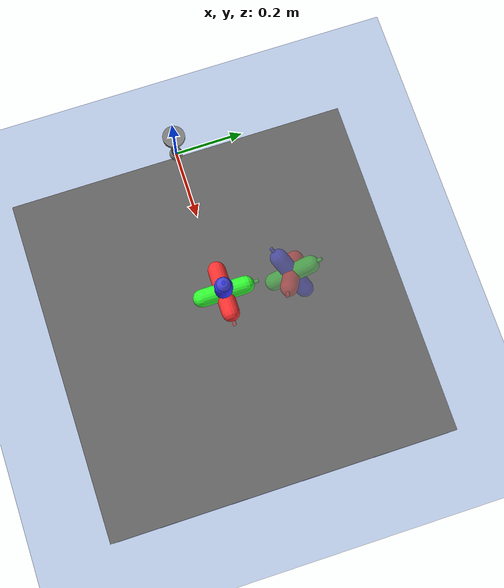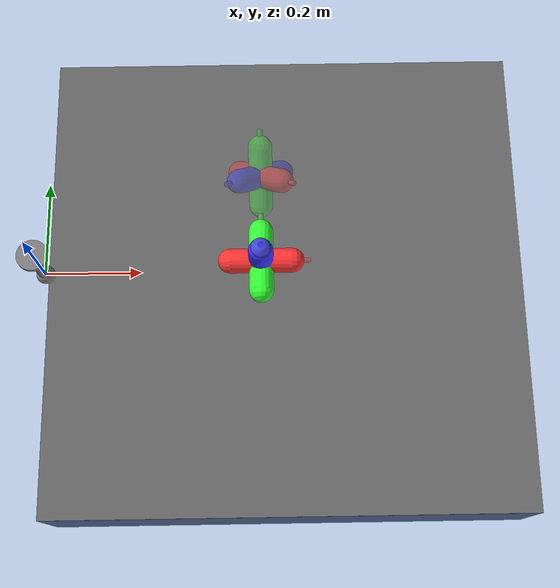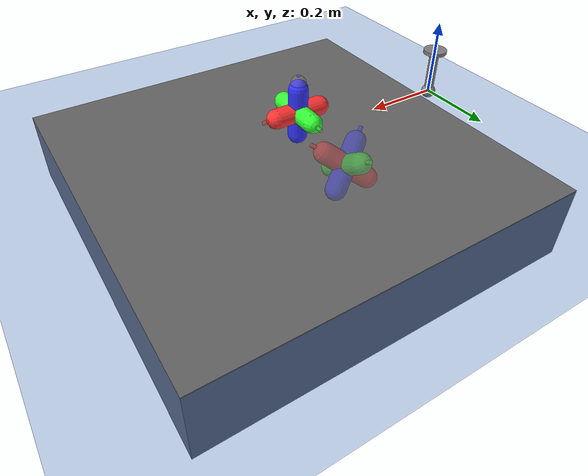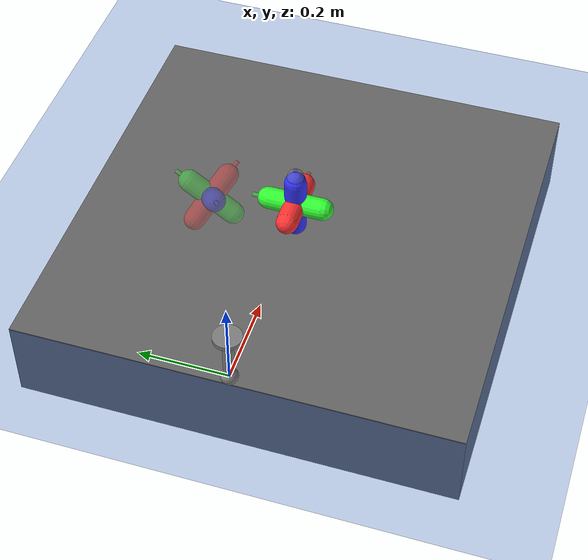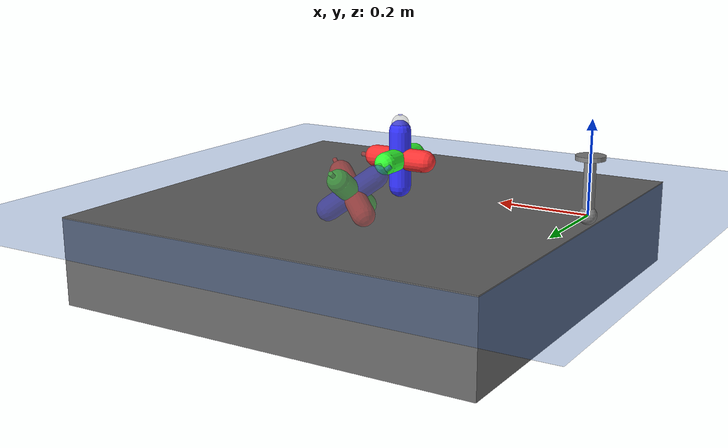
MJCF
<mujoco model="Panda">
  <include file="../common.xml"/>

  <size memory="1M"/>

  <!-- const char kPlannerNames[] =
    "Sampling\n"
    "Gradient\n"
    "iLQG\n"
    "iLQS\n"
    "Robust Sampling\n"
    "Cross Entropy\n"
    "Sample Gradient"; -->

  <custom>
    <numeric name="agent_planner" data="0" />
    <numeric name="agent_horizon" data="0.8" />
    <numeric name="agent_timestep" data="0.01" />
    <numeric name="agent_policy_width" data="0.001" />
    <numeric name="sampling_trajectories" data="116"/>
    <numeric name="sampling_spline_points" data="5"/>
    <!-- sampling_exploration is "Noise Std" slider in GUI -->
    <numeric name="sampling_exploration" data="0.295 0.0" />
    <numeric name="gradient_spline_points" data="6" />

    <!-- cem -->
    <numeric name="n_elite" data="4" />
    <numeric name="std_min" data="0.5" />
  </custom>

  <!-- Set camera angle. -->
  <statistic extent="1.0" center="0.1 0.05 -0.1"/>
  <visual>
    <quality shadowsize="8192"/>
    <global azimuth="200" elevation="-25" />
  </visual>

  <default>
    <geom solref=".001 1" friction="0.3"/>
    <default class="no_collision">
      <geom group="1" contype="0" conaffinity="0" mass="0"/>
    </default>
  </default>

  <compiler texturedir="./textures"/>

  <worldbody>
    <site name="world"/>
    <light pos="0 -0.1 0.5" dir="0 0.2 -1" diffuse="0.7 0.7 0.7" specular="0.3 0.3 0.3" directional="true" castshadow="true"/>

    <!-- Grid for rendering shows up just below table surface. -->
    <geom name="floor" pos="0 0 -0.03" size="0 0 0.05" type="plane" material="blue_grid"/>

    <!-- Table surface height matches that in hardware and Drake simulation. -->
    <body name="table" pos="0.5 0 -0.129">
      <geom name="table" pos="0 0 0" size="0.5 0.5 0.1" type="box" rgba="0.4 0.4 0.4 1"/>
    </body>

    <body name="target" pos="0.45 0.2 0.032" quat="0.880 0.280 -0.365 -0.116" gravcomp="1" mocap="true">
      <!-- Capsules in order BRG, along ZXY directions. -->
      <geom class="no_collision" type="capsule" size="0.025" fromto="0 0 -0.0625 0 0 0.0625" mass=".33" rgba=".2 .2 1 0.4"/>
      <geom class="no_collision" type="capsule" size="0.025" fromto="-0.0625 0 0 0.0625 0 0" mass=".33" rgba="1 .2 .2 0.4"/>
      <geom class="no_collision" type="capsule" size="0.025" fromto="0 -0.0625 0 0 0.0625 0" mass=".33" rgba=".2 1 .2 0.4"/>

      <!-- Add triad for viewing orientation. -->
      <geom class="no_collision" type="cylinder" size="0.005" fromto="0 0 0 0.1 0 0" rgba="1 .2 .2 .4"/>
      <geom class="no_collision" type="cylinder" size="0.005" fromto="0 0 0 0 0.1 0" rgba=".2 1 .2 .4"/>
      <geom class="no_collision" type="cylinder" size="0.005" fromto="0 0 0 0 0 0.1" rgba=".2 .2 1 .4"/>
    </body>

    <body name="final_target" pos="0.45 0.2 0.032" quat="0.880 0.280 -0.365 -0.116" gravcomp="1" mocap="true">
      <!-- Capsules in order BRG, along ZXY directions. -->
      <geom class="no_collision" type="capsule" size="0.025" fromto="0 0 -0.0625 0 0 0.0625" mass=".33" rgba=".2 .2 1 0"/>
      <geom class="no_collision" type="capsule" size="0.025" fromto="-0.0625 0 0 0.0625 0 0" mass=".33" rgba="1 .2 .2 0"/>
      <geom class="no_collision" type="capsule" size="0.025" fromto="0 -0.0625 0 0 0.0625 0" mass=".33" rgba=".2 1 .2 0"/>

      <!-- Add triad for viewing orientation. -->
      <geom class="no_collision" type="cylinder" size="0.005" fromto="0 0 0 0.1 0 0" rgba="1 .2 .2 .4"/>
      <geom class="no_collision" type="cylinder" size="0.005" fromto="0 0 0 0 0.1 0" rgba=".2 1 .2 .4"/>
      <geom class="no_collision" type="cylinder" size="0.005" fromto="0 0 0 0 0 0.1" rgba=".2 .2 1 .4"/>
    </body>

    <body name="end_effector_target" mocap="true" pos="0.45 0 0.15">
      <geom name="end_effector_target" type="sphere" size="0.0195" class="no_collision" rgba=".5 .5 .5 .3"/>
    </body>

    <body name="jack" pos="0.45 0 0.07">
      <freejoint/>
      <!-- Capsules in order BRG, along ZXY directions. -->
      <geom type="capsule" size="0.025" fromto="0 0 -0.0625 0 0 0.0625" mass=".33" rgba=".2 .2 1 1"/>
      <geom type="capsule" size="0.025" fromto="-0.0625 0 0 0.0625 0 0" mass=".33" rgba="1 .2 .2 1"/>
      <geom type="capsule" size="0.025" fromto="0 -0.0625 0 0 0.0625 0" mass=".33" rgba=".2 1 .2 1"/>

      <!-- Add triad for viewing orientation. -->
      <geom class="no_collision" type="cylinder" size="0.005" fromto="0 0 0 0.1 0 0" rgba="1 .2 .2 .4"/>
      <geom class="no_collision" type="cylinder" size="0.005" fromto="0 0 0 0 0.1 0" rgba=".2 1 .2 .4"/>
      <geom class="no_collision" type="cylinder" size="0.005" fromto="0 0 0 0 0 0.1" rgba=".2 .2 1 .4"/>
    </body>
  </worldbody>

  <keyframe>
    <!-- TODO:  It's unclear what this is used for. -->
    <!-- Guessed order:  EE xyz, jack wxyz, jack xyz -->
    <key name="home" qpos="0.7 0.00 0.482 1 0 0 0 0.55 0.0 0.45"/>
  </keyframe>

  <sensor>
    <!-- norm_type=0 means kQuadratic norm:  y = 0.5 * x' * x -->
    <!-- user="norm_type weight weight_lower weight_upper extras_by_norm_type" -->
    <user name="End Effector Target" dim="3" user="0 10 0 30"/>
    <user name="Jack Target" dim="3" user="0 90 80 300"/>
    <user name="Jack Orientation" dim="3" user="0 0.8 0 4"/>
    <user name="End Effector Velocity" dim="3" user="0 0.03 0 0.1"/>
    <user name="Jack Linear Velocity" dim="3" user="0 0 0 0.05"/>
    <user name="Jack Angular Velocity" dim="3" user="0 0 0 0.02"/>
    <user name="Actuation" dim="3" user="0 0.0008 0 0.05"/>
    <user name="Jack Final Target" dim="3" user="0 0 0 0"/>
    <user name="Jack Final Orientation" dim="3" user="0 0 0 0"/>

    <!-- Sensors for body locations. -->
    <framepos name="end_effector" objtype="site" objname="eeff"/>
    <framepos name="jack" objtype="body" objname="jack"/>
    <framepos name="target" objtype="body" objname="target"/>
    <framepos name="final_target" objtype="body" objname="final_target"/>
    <framepos name="end_effector_target" objtype="geom" objname="end_effector_target"/>

    <!-- Sensors for body orientations. -->
    <framequat name="jack_quat" objtype="body" objname="jack"/>
    <framequat name="target_quat" objtype="body" objname="target"/>
    <framequat name="final_target_quat" objtype="body" objname="final_target"/>

    <!-- Sensors for body velocities. -->
    <framelinvel name="end_effector_linear_vel" objtype="site" objname="eeff"/>
    <framelinvel name="jack_linear_vel" objtype="body" objname="jack"/>
    <frameangvel name="jack_angular_vel" objtype="body" objname="jack"/>

    <!-- Sensors for traces. -->
    <framepos name="trace0" objtype="site" objname="eeff"/>
    <framepos name="trace1" objtype="body" objname="jack"/>
  </sensor>

  <include file="end_effector.xml"/>
</mujoco>

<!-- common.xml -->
<mujoco>

    <visual>
        <headlight ambient=".4 .4 .4" diffuse=".8 .8 .8" specular="0.1 0.1 0.1"/>
        <map znear=".01"/>
        <quality shadowsize="2048"/>
        <global elevation="-15"/>
    </visual>

    <asset>
        <texture name="blue_grid" type="2d" builtin="checker" rgb1=".02 .14 .44" rgb2=".27 .55 1" width="300" height="300" mark="edge" markrgb="1 1 1"/>
        <material name="blue_grid" texture="blue_grid" texrepeat="1 1" texuniform="true" reflectance=".2"/>

        <texture name="grey_grid" type="2d" builtin="checker" rgb1=".26 .26 .26" rgb2=".6 .6 .6" width="300" height="300" mark="edge" markrgb="1 1 1"/>
        <material name="grey_grid" texture="grey_grid" texrepeat="1 1" texuniform="true" reflectance=".2"/>
        <texture name="skybox" type="skybox" builtin="gradient" rgb1=".66 .79 1" rgb2=".9 .91 .93" width="800" height="800"/>

        <material name="self" rgba=".7 .5 .3 1"/>
        <material name="self_default" rgba=".7 .5 .3 1"/>
        <material name="self_highlight" rgba="0 .5 .3 1"/>
        <material name="effector" rgba=".7 .4 .2 1"/>
        <material name="effector_default" rgba=".7 .4 .2 1"/>
        <material name="effector_highlight" rgba="0 .5 .3 1"/>
        <material name="decoration" rgba=".2 .6 .3 1"/>
        <material name="eye" rgba="0 .2 1 1"/>
        <material name="target" rgba=".6 .3 .3 1"/>
        <material name="target_default" rgba=".6 .3 .3 1"/>
        <material name="target_highlight" rgba=".6 .3 .3 .4"/>
        <material name="site" rgba=".5 .5 .5 .3"/>
    </asset>

    <size memory="1M"/>

    <statistic extent="0.4" center="0.3 0.1 0"/>

    <visual>
        <quality shadowsize="8192"/>
        <global azimuth="180" elevation="-30"/>
    </visual>

    <default>
        <geom friction="1.0"/>
    </default>

    <compiler angle="radian" autolimits="true"/>

    <asset>
        <mesh name="apple" file="../../shared_assets/apple/apple.obj" />
        <mesh name="apple_contact0" file="../../shared_assets/apple/contact0.stl"  />
        <mesh name="apple_contact1" file="../../shared_assets/apple/contact1.stl"  />

        <mesh name="doorknob" file="../../shared_assets/doorknob/doorknob.obj" />

        <mesh name="flashlight" file="../../shared_assets/flashlight/flashlight.obj" />
        <mesh name="flashlight_contact0" file="../../shared_assets/flashlight/contact0.stl"  />
        <mesh name="flashlight_contact1" file="../../shared_assets/flashlight/contact1.stl"  />

        <mesh name="hammer" file="../../shared_assets/hammer/hammer.obj" />
        <mesh name="hammer_contact0" file="../../shared_assets/hammer/contact0.stl"  />
        <mesh name="hammer_contact1" file="../../shared_assets/hammer/contact1.stl"  />

        <mesh name="phone" file="../../shared_assets/phone/phone.obj" />
        <mesh name="phone_contact0" file="../../shared_assets/phone/contact0.stl"  />
        <mesh name="phone_contact1" file="../../shared_assets/phone/contact1.stl"  />
        <mesh name="phone_contact2" file="../../shared_assets/phone/contact2.stl"  />

        <mesh name="stapler" file="../../shared_assets/stapler/stapler.obj" />
        <mesh name="stapler_contact0" file="../../shared_assets/stapler/contact0.stl"  />
        <mesh name="stapler_contact1" file="../../shared_assets/stapler/contact1.stl"  />
        <mesh name="stapler_contact2" file="../../shared_assets/stapler/contact2.stl"  />
        <mesh name="stapler_contact3" file="../../shared_assets/stapler/contact3.stl"  />
        <mesh name="stapler_contact4" file="../../shared_assets/stapler/contact4.stl"  />

        <mesh name="waterbottle" file="../../shared_assets/waterbottle/waterbottle.obj" />
        <mesh name="waterbottle_contact0" file="../../shared_assets/waterbottle/contact0.stl"  />
        <mesh name="waterbottle_contact1" file="../../shared_assets/waterbottle/contact1.stl"  />
    </asset>

</mujoco>

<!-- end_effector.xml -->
<mujoco model="end_effector">
  <compiler angle="radian" meshdir="assets" autolimits="true"/>

  <option timestep="0.0005"/>

  <worldbody>
    <light name="top" pos="0 0 2" mode="trackcom"/>
    <body name="end_effector_tip" gravcomp="1">
      <!-- TODO:  check friction coefficients. -->
      <geom type="sphere" size="0.0195" mass="0.057" priority="1" condim="3" friction="0.6 .01 .003"/>
      <geom type="cylinder" size="0.0127 0.0508" mass="0.1340688" pos="0 0 0.0661" priority="1" condim="3"/>
      <geom type="cylinder" size="0.0315 0.0048" mass="0.0779312" pos="0 0 0.1217" priority="1" condim="3"/>
        <joint name="end_effector_x" type="slide" range="0.15 0.75" axis="1 0 0" limited="true"/>
          <joint name="end_effector_y" type="slide" range="-0.6 0.6" axis="0 1 0" limited="true"/>
            <joint name="end_effector_z" type="slide" range="-0.03 0.3" axis="0 0 1" limited="true"/>
            <site name="eeff" pos="0 0 0.0" group="3"/>
    </body>
  </worldbody>

  <actuator>
    <general site="eeff" refsite="world" gaintype="fixed" forcerange="-1.5 1.5" ctrlrange="-1 1" forcelimited="true" ctrllimited="true" gainprm="1.5" gear="1 0 0 0 0 0"/>
    <general site="eeff" refsite="world" gaintype="fixed" forcerange="-1.5 1.5" ctrlrange="-1 1" forcelimited="true" ctrllimited="true" gainprm="1.5" gear="0 1 0 0 0 0"/>
    <general site="eeff" refsite="world" gaintype="fixed" forcerange="-1.5 1.5" ctrlrange="-1 1" forcelimited="true" ctrllimited="true" gainprm="1.5" gear="0 0 1 0 0 0"/>
  </actuator>
</mujoco>
